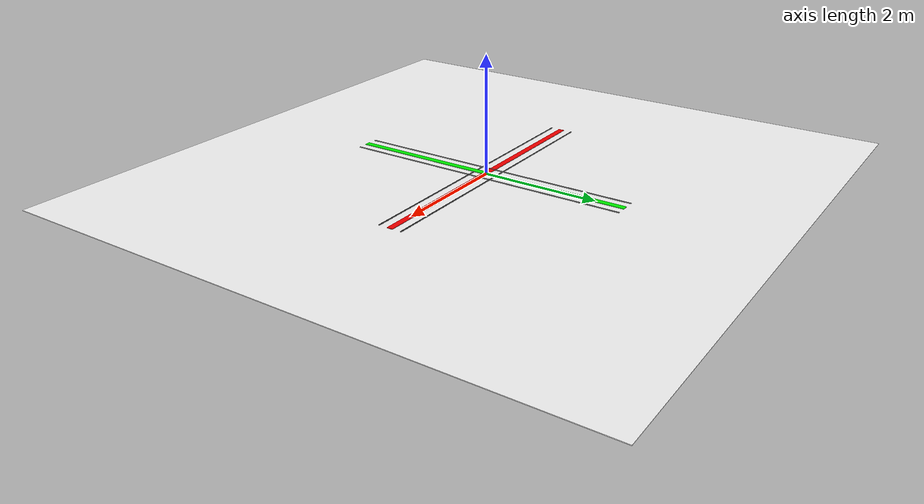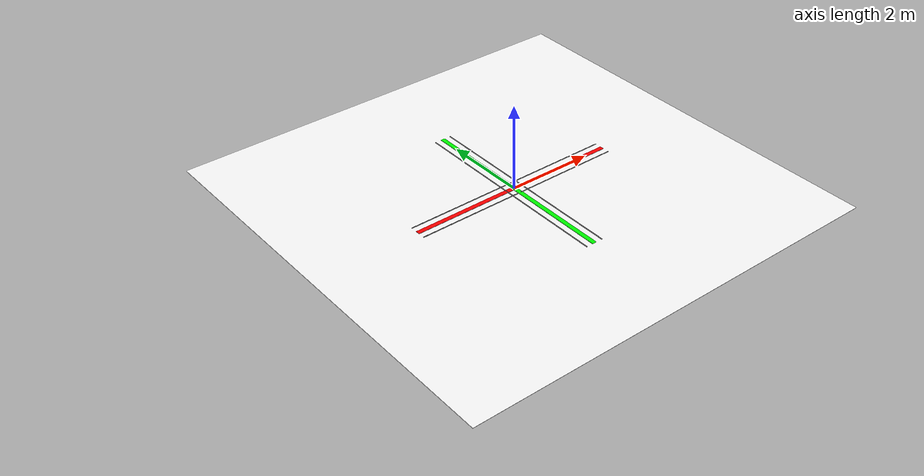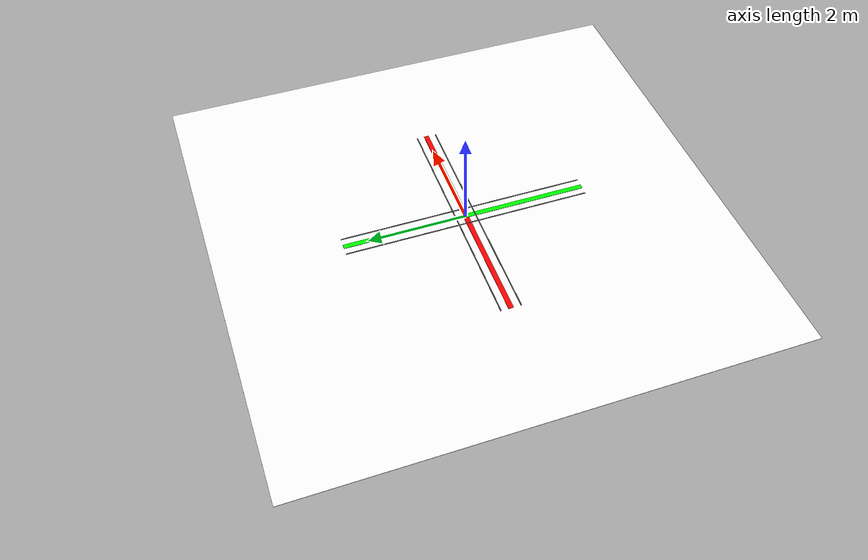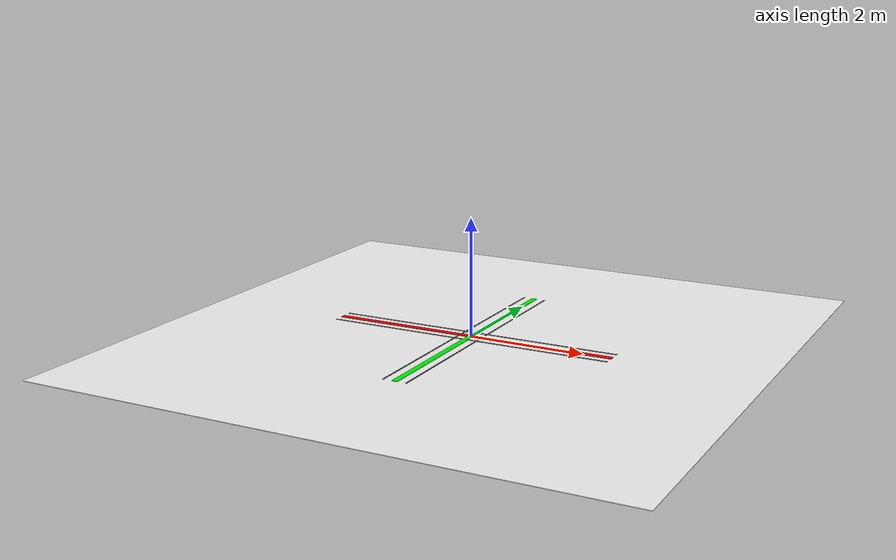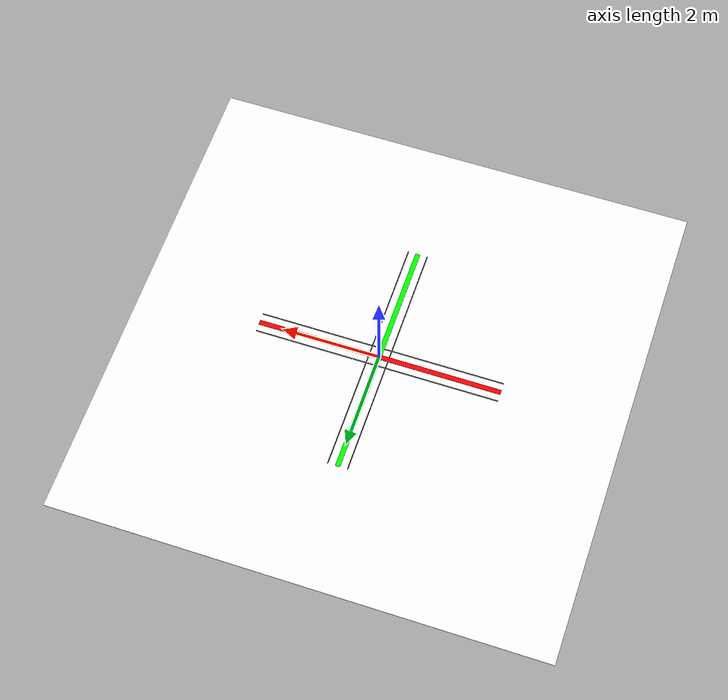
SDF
<?xml version="1.0"?>
<sdf version="1.6">
  <world name="axis_lines_with_black_lines">
    <!-- Sun and Ground Plane -->
    <include>
      <uri>model://sun</uri>
    </include>

    <!-- Light at 0 meters -->
    <light type="point" name="light_0m">
      <pose>0 0 5 0 0 0</pose>
      <diffuse>1 1 1 1</diffuse>
      <specular>0.5 0.5 0.5 1</specular>
      <attenuation>
        <range>10</range>
        <constant>0.5</constant>
        <linear>0.01</linear>
        <quadratic>0.001</quadratic>
      </attenuation>
      <cast_shadows>true</cast_shadows>
    </light>

    <!-- White floor with collision -->
    <model name="white_floor">
      <static>true</static>
      <link name="floor_link">
        <visual name="floor_visual">
          <pose>0 0 -0.01 0 0 0</pose>
          <geometry>
            <box>
              <size>10 10 0.01</size> <!-- Large white floor -->
            </box>
          </geometry>
          <material>
            <ambient>1 1 1 1</ambient> <!-- White color -->
            <diffuse>1 1 1 1</diffuse>
          </material>
        </visual>
        <collision name="floor_collision">
          <pose>0 0 -0.01 0 0 0</pose>
          <geometry>
            <box>
              <size>10 10 0.01</size> <!-- Collision matches floor size -->
            </box>
          </geometry>
        </collision>
      </link>
    </model>

    <!-- X-axis main line -->
    <model name="x_axis_line">
      <static>true</static>
      <link name="x_axis_link">
        <visual name="x_axis_visual">
          <pose>0 0 0.01 0 0 0</pose> <!-- Slightly above the floor -->
          <geometry>
            <box>
              <size>5 0.1 0.01</size> <!-- Main X-axis line -->
            </box>
          </geometry>
          <material>
            <ambient>1 0 0 1</ambient> <!-- Red color -->
            <diffuse>1 0 0 1</diffuse>
          </material>
        </visual>

        <!-- Thin black lines at +0.2 and -0.2 meters on Y-axis -->
        <visual name="x_axis_black_positive">
          <pose>0 0.2 0.01 0 0 0</pose> <!-- +0.2 meters from X-axis -->
          <geometry>
            <box>
              <size>5 0.02 0.01</size> <!-- Thin black line -->
            </box>
          </geometry>
          <material>
            <ambient>0 0 0 1</ambient> <!-- Black color -->
            <diffuse>0 0 0 1</diffuse>
          </material>
        </visual>
        <visual name="x_axis_black_negative">
          <pose>0 -0.2 0.01 0 0 0</pose> <!-- -0.2 meters from X-axis -->
          <geometry>
            <box>
              <size>5 0.02 0.01</size> <!-- Thin black line -->
            </box>
          </geometry>
          <material>
            <ambient>0 0 0 1</ambient> <!-- Black color -->
            <diffuse>0 0 0 1</diffuse>
          </material>
        </visual>
      </link>
    </model>

    <!-- Y-axis main line -->
    <model name="y_axis_line">
      <static>true</static>
      <link name="y_axis_link">
        <visual name="y_axis_visual">
          <pose>0 0 0.01 0 0 1.5708</pose> <!-- Rotate 90 degrees for Y-axis -->
          <geometry>
            <box>
              <size>5 0.1 0.01</size> <!-- Main Y-axis line -->
            </box>
          </geometry>
          <material>
            <ambient>0 1 0 1</ambient> <!-- Green color -->
            <diffuse>0 1 0 1</diffuse>
          </material>
        </visual>

        <!-- Thin black lines at +0.2 and -0.2 meters on X-axis -->
        <visual name="y_axis_black_positive">
          <pose>0.2 0 0.01 0 0 1.5708</pose> <!-- +0.2 meters from Y-axis -->
          <geometry>
            <box>
              <size>5 0.02 0.01</size> <!-- Thin black line -->
            </box>
          </geometry>
          <material>
            <ambient>0 0 0 1</ambient> <!-- Black color -->
            <diffuse>0 0 0 1</diffuse>
          </material>
        </visual>
        <visual name="y_axis_black_negative">
          <pose>-0.2 0 0.01 0 0 1.5708</pose> <!-- -0.2 meters from Y-axis -->
          <geometry>
            <box>
              <size>5 0.02 0.01</size> <!-- Thin black line -->
            </box>
          </geometry>
          <material>
            <ambient>0 0 0 1</ambient> <!-- Black color -->
            <diffuse>0 0 0 1</diffuse>
          </material>
        </visual>
      </link>
    </model>

  </world>
</sdf>
